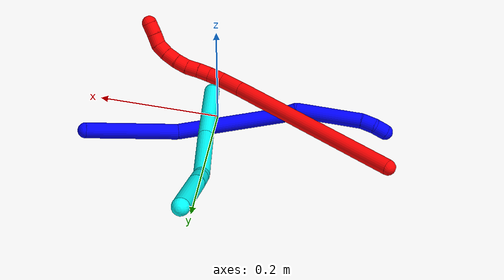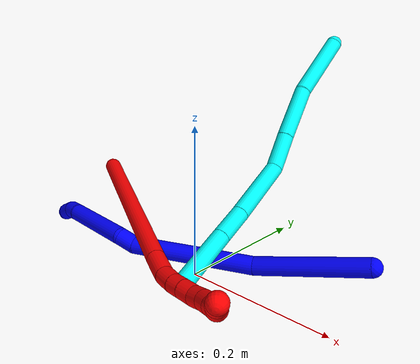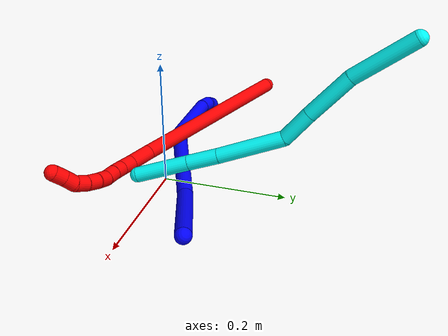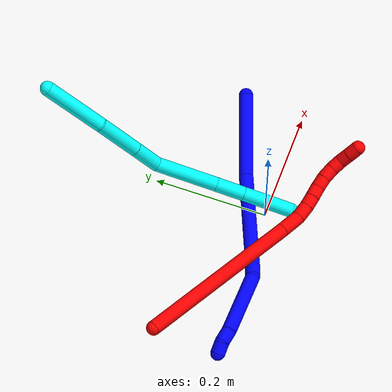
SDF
<sdf version="1.7">
 <world name="default">
  <model name="bin">
   <static>1</static>
   <link name="bottom">
    <collision name="collision-bottom">
     <pose>0 0 -0.01 0 -0 0</pose>
     <geometry><box><size>0.8 0.6 0.02</size></box></geometry>
     <surface>
      <friction><ode><mu>100</mu><mu2>100</mu2></ode></friction>
      <contact><collide_bitmask>65535</collide_bitmask></contact>
     </surface>
    </collision>
   </link>
   <link name="west_wall">
    <collision name="collision-west_wall">
     <pose>-0.41 0 0.1 0 -0 0</pose>
     <geometry><box><size>0.02 0.6 0.2</size></box></geometry>
     <surface>
      <friction><ode><mu>100</mu><mu2>100</mu2></ode></friction>
      <contact><collide_bitmask>65535</collide_bitmask></contact>
     </surface>
    </collision>
   </link>
   <link name="east_wall">
    <collision name="collision-east_wall">
     <pose>0.41 0 0.1 0 -0 0</pose>
     <geometry><box><size>0.02 0.6 0.2</size></box></geometry>
     <surface>
      <friction><ode><mu>100</mu><mu2>100</mu2></ode></friction>
      <contact><collide_bitmask>65535</collide_bitmask></contact>
     </surface>
    </collision>
   </link>
   <link name="south_wall">
    <collision name="collision-south_wall">
     <pose>0 -0.31 0.1 0 -0 0</pose>
     <geometry><box><size>0.8 0.02 0.2</size></box></geometry>
     <surface>
      <friction><ode><mu>100</mu><mu2>100</mu2></ode></friction>
      <contact><collide_bitmask>65535</collide_bitmask></contact>
     </surface>
    </collision>
   </link>
   <link name="north_wall">
    <collision name="collision-north_wall">
     <pose>0 0.31 0.1 0 -0 0</pose>
     <geometry><box><size>0.8 0.02 0.2</size></box></geometry>
     <surface>
      <friction><ode><mu>100</mu><mu2>100</mu2></ode></friction>
      <contact><collide_bitmask>65535</collide_bitmask></contact>
     </surface>
    </collision>
   </link>
  </model>
  <model name="1">
   <static>0</static>
   <link name="1">
    <collision name="collision-cylinder-e_1_1_4">
     <pose>-0.056085 -0.009486 -0.048654 2.94903 -0.846986 -2.71946</pose>
     <geometry><cylinder><radius>0.0125</radius><length>0.149703</length></cylinder></geometry>
     <surface>
      <friction><ode><mu>1.16</mu><mu2>1.16</mu2><slip1>0</slip1><slip2>0</slip2></ode></friction>
      <contact><ode><kp>1e+06</kp><kd>1</kd><max_vel>0</max_vel><min_depth>0.001</min_depth></ode></contact>
     </surface>
    </collision>
    <visual name="visual-cylinder-e_1_1_4">
     <pose>-0.056085 -0.009486 -0.048654 2.94903 -0.846986 -2.71946</pose>
     <geometry><cylinder><radius>0.0125</radius><length>0.149703</length></cylinder></geometry>
     <material><ambient>0 0 1 1</ambient></material>
    </visual>
    <collision name="collision-cylinder-e_2_4_5">
     <pose>-0.18061 -0.045147 -0.144432 2.63459 -0.903636 -2.16087</pose>
     <geometry><cylinder><radius>0.0125</radius><length>0.174238</length></cylinder></geometry>
     <surface>
      <friction><ode><mu>1.16</mu><mu2>1.16</mu2><slip1>0</slip1><slip2>0</slip2></ode></friction>
      <contact><ode><kp>1e+06</kp><kd>1</kd><max_vel>0</max_vel><min_depth>0.001</min_depth></ode></contact>
     </surface>
    </collision>
    <visual name="visual-cylinder-e_2_4_5">
     <pose>-0.18061 -0.045147 -0.144432 2.63459 -0.903636 -2.16087</pose>
     <geometry><cylinder><radius>0.0125</radius><length>0.174238</length></cylinder></geometry>
     <material><ambient>0 0 1 1</ambient></material>
    </visual>
    <collision name="collision-cylinder-e_3_5_6">
     <pose>-0.25981 -0.077099 -0.194282 2.01166 -1.03507 -1.46352</pose>
     <geometry><cylinder><radius>0.0125</radius><length>0.02503</length></cylinder></geometry>
     <surface>
      <friction><ode><mu>1.16</mu><mu2>1.16</mu2><slip1>0</slip1><slip2>0</slip2></ode></friction>
      <contact><ode><kp>1e+06</kp><kd>1</kd><max_vel>0</max_vel><min_depth>0.001</min_depth></ode></contact>
     </surface>
    </collision>
    <visual name="visual-cylinder-e_3_5_6">
     <pose>-0.25981 -0.077099 -0.194282 2.01166 -1.03507 -1.46352</pose>
     <geometry><cylinder><radius>0.0125</radius><length>0.02503</length></cylinder></geometry>
     <material><ambient>0 0 1 1</ambient></material>
    </visual>
    <collision name="collision-cylinder-e_4_6_7">
     <pose>-0.322246 -0.082528 -0.212382 -3.11889 -1.28155 3.11115</pose>
     <geometry><cylinder><radius>0.0125</radius><length>0.107827</length></cylinder></geometry>
     <surface>
      <friction><ode><mu>1.16</mu><mu2>1.16</mu2><slip1>0</slip1><slip2>0</slip2></ode></friction>
      <contact><ode><kp>1e+06</kp><kd>1</kd><max_vel>0</max_vel><min_depth>0.001</min_depth></ode></contact>
     </surface>
    </collision>
    <visual name="visual-cylinder-e_4_6_7">
     <pose>-0.322246 -0.082528 -0.212382 -3.11889 -1.28155 3.11115</pose>
     <geometry><cylinder><radius>0.0125</radius><length>0.107827</length></cylinder></geometry>
     <material><ambient>0 0 1 1</ambient></material>
    </visual>
    <collision name="collision-cylinder-e_5_7_8">
     <pose>-0.384368 -0.079668 -0.231014 -2.48507 -1.19569 2.21407</pose>
     <geometry><cylinder><radius>0.0125</radius><length>0.022458</length></cylinder></geometry>
     <surface>
      <friction><ode><mu>1.16</mu><mu2>1.16</mu2><slip1>0</slip1><slip2>0</slip2></ode></friction>
      <contact><ode><kp>1e+06</kp><kd>1</kd><max_vel>0</max_vel><min_depth>0.001</min_depth></ode></contact>
     </surface>
    </collision>
    <visual name="visual-cylinder-e_5_7_8">
     <pose>-0.384368 -0.079668 -0.231014 -2.48507 -1.19569 2.21407</pose>
     <geometry><cylinder><radius>0.0125</radius><length>0.022458</length></cylinder></geometry>
     <material><ambient>0 0 1 1</ambient></material>
    </visual>
    <collision name="collision-cylinder-e_6_8_2">
     <pose>-0.402359 -0.073632 -0.240459 -2.62364 -0.814315 2.03984</pose>
     <geometry><cylinder><radius>0.0125</radius><length>0.020744</length></cylinder></geometry>
     <surface>
      <friction><ode><mu>1.16</mu><mu2>1.16</mu2><slip1>0</slip1><slip2>0</slip2></ode></friction>
      <contact><ode><kp>1e+06</kp><kd>1</kd><max_vel>0</max_vel><min_depth>0.001</min_depth></ode></contact>
     </surface>
    </collision>
    <visual name="visual-cylinder-e_6_8_2">
     <pose>-0.402359 -0.073632 -0.240459 -2.62364 -0.814315 2.03984</pose>
     <geometry><cylinder><radius>0.0125</radius><length>0.020744</length></cylinder></geometry>
     <material><ambient>0 0 1 1</ambient></material>
    </visual>
    <collision name="collision-sphere-2">
     <pose>-0.409903 -0.070107 -0.246644 0 -0 0</pose>
     <geometry><sphere><radius>0.0125</radius></sphere></geometry>
     <surface>
      <friction><ode><mu>1.16</mu><mu2>1.16</mu2><slip1>0</slip1><slip2>0</slip2></ode></friction>
      <contact><ode><kp>1e+06</kp><kd>1</kd><max_vel>0</max_vel><min_depth>0.001</min_depth></ode></contact>
     </surface>
    </collision>
    <visual name="visual-sphere-2">
     <pose>-0.409903 -0.070107 -0.246644 0 -0 0</pose>
     <geometry><sphere><radius>0.0125</radius></sphere></geometry>
     <material><ambient>0 0 1 1</ambient></material>
    </visual>
    <collision name="collision-sphere-4">
     <pose>-0.112171 -0.018973 -0.097308 0 -0 0</pose>
     <geometry><sphere><radius>0.0125</radius></sphere></geometry>
     <surface>
      <friction><ode><mu>1.16</mu><mu2>1.16</mu2><slip1>0</slip1><slip2>0</slip2></ode></friction>
      <contact><ode><kp>1e+06</kp><kd>1</kd><max_vel>0</max_vel><min_depth>0.001</min_depth></ode></contact>
     </surface>
    </collision>
    <visual name="visual-sphere-4">
     <pose>-0.112171 -0.018973 -0.097308 0 -0 0</pose>
     <geometry><sphere><radius>0.0125</radius></sphere></geometry>
     <material><ambient>0 0 1 1</ambient></material>
    </visual>
    <collision name="collision-sphere-1">
     <geometry><sphere><radius>0.0125</radius></sphere></geometry>
     <surface>
      <friction><ode><mu>1.16</mu><mu2>1.16</mu2><slip1>0</slip1><slip2>0</slip2></ode></friction>
      <contact><ode><kp>1e+06</kp><kd>1</kd><max_vel>0</max_vel><min_depth>0.001</min_depth></ode></contact>
     </surface>
    </collision>
    <visual name="visual-sphere-1">
     <geometry><sphere><radius>0.0125</radius></sphere></geometry>
     <material><ambient>0 0 1 1</ambient></material>
    </visual>
    <collision name="collision-sphere-8">
     <pose>-0.394816 -0.077157 -0.234273 0 -0 0</pose>
     <geometry><sphere><radius>0.0125</radius></sphere></geometry>
     <surface>
      <friction><ode><mu>1.16</mu><mu2>1.16</mu2><slip1>0</slip1><slip2>0</slip2></ode></friction>
      <contact><ode><kp>1e+06</kp><kd>1</kd><max_vel>0</max_vel><min_depth>0.001</min_depth></ode></contact>
     </surface>
    </collision>
    <visual name="visual-sphere-8">
     <pose>-0.394816 -0.077157 -0.234273 0 -0 0</pose>
     <geometry><sphere><radius>0.0125</radius></sphere></geometry>
     <material><ambient>0 0 1 1</ambient></material>
    </visual>
    <collision name="collision-sphere-5">
     <pose>-0.249049 -0.071322 -0.191556 0 -0 0</pose>
     <geometry><sphere><radius>0.0125</radius></sphere></geometry>
     <surface>
      <friction><ode><mu>1.16</mu><mu2>1.16</mu2><slip1>0</slip1><slip2>0</slip2></ode></friction>
      <contact><ode><kp>1e+06</kp><kd>1</kd><max_vel>0</max_vel><min_depth>0.001</min_depth></ode></contact>
     </surface>
    </collision>
    <visual name="visual-sphere-5">
     <pose>-0.249049 -0.071322 -0.191556 0 -0 0</pose>
     <geometry><sphere><radius>0.0125</radius></sphere></geometry>
     <material><ambient>0 0 1 1</ambient></material>
    </visual>
    <collision name="collision-sphere-6">
     <pose>-0.270572 -0.082877 -0.197008 0 -0 0</pose>
     <geometry><sphere><radius>0.0125</radius></sphere></geometry>
     <surface>
      <friction><ode><mu>1.16</mu><mu2>1.16</mu2><slip1>0</slip1><slip2>0</slip2></ode></friction>
      <contact><ode><kp>1e+06</kp><kd>1</kd><max_vel>0</max_vel><min_depth>0.001</min_depth></ode></contact>
     </surface>
    </collision>
    <visual name="visual-sphere-6">
     <pose>-0.270572 -0.082877 -0.197008 0 -0 0</pose>
     <geometry><sphere><radius>0.0125</radius></sphere></geometry>
     <material><ambient>0 0 1 1</ambient></material>
    </visual>
    <collision name="collision-sphere-7">
     <pose>-0.37392 -0.082179 -0.227756 0 -0 0</pose>
     <geometry><sphere><radius>0.0125</radius></sphere></geometry>
     <surface>
      <friction><ode><mu>1.16</mu><mu2>1.16</mu2><slip1>0</slip1><slip2>0</slip2></ode></friction>
      <contact><ode><kp>1e+06</kp><kd>1</kd><max_vel>0</max_vel><min_depth>0.001</min_depth></ode></contact>
     </surface>
    </collision>
    <visual name="visual-sphere-7">
     <pose>-0.37392 -0.082179 -0.227756 0 -0 0</pose>
     <geometry><sphere><radius>0.0125</radius></sphere></geometry>
     <material><ambient>0 0 1 1</ambient></material>
    </visual>
    <inertial>
     <pose>-0.196188 -0.046863 -0.140778 0 -0 0</pose>
     <mass>0.5</mass>
     <inertia>
      <ixx>-0.000697</ixx>
      <ixy>0</ixy>
      <ixz>0</ixz>
      <iyy>0.000433</iyy>
      <iyz>0</iyz>
      <izz>0.000825</izz>
     </inertia>
    </inertial>
   </link>
   <pose>0.193427 0.103572 0.041335 -0.719941 0.259501 -0.220732</pose>
  </model>
  <model name="2">
   <static>0</static>
   <link name="2">
    <collision name="collision-cylinder-e_1_1_4">
     <pose>0.065943 -0.015106 0.130286 0.115429 0.465862 0.027413</pose>
     <geometry><cylinder><radius>0.0125</radius><length>0.293605</length></cylinder></geometry>
     <surface>
      <friction><ode><mu>1.16</mu><mu2>1.16</mu2><slip1>0</slip1><slip2>0</slip2></ode></friction>
      <contact><ode><kp>1e+06</kp><kd>1</kd><max_vel>0</max_vel><min_depth>0.001</min_depth></ode></contact>
     </surface>
    </collision>
    <visual name="visual-cylinder-e_1_1_4">
     <pose>0.065943 -0.015106 0.130286 0.115429 0.465862 0.027413</pose>
     <geometry><cylinder><radius>0.0125</radius><length>0.293605</length></cylinder></geometry>
     <material><ambient>1 0 0 1</ambient></material>
    </visual>
    <collision name="collision-cylinder-e_2_4_5">
     <pose>0.141013 -0.032208 0.277366 0.118288 0.494882 0.029914</pose>
     <geometry><cylinder><radius>0.0125</radius><length>0.038438</length></cylinder></geometry>
     <surface>
      <friction><ode><mu>1.16</mu><mu2>1.16</mu2><slip1>0</slip1><slip2>0</slip2></ode></friction>
      <contact><ode><kp>1e+06</kp><kd>1</kd><max_vel>0</max_vel><min_depth>0.001</min_depth></ode></contact>
     </surface>
    </collision>
    <visual name="visual-cylinder-e_2_4_5">
     <pose>0.141013 -0.032208 0.277366 0.118288 0.494882 0.029914</pose>
     <geometry><cylinder><radius>0.0125</radius><length>0.038438</length></cylinder></geometry>
     <material><ambient>1 0 0 1</ambient></material>
    </visual>
    <collision name="collision-cylinder-e_3_5_6">
     <pose>0.157995 -0.033905 0.303803 -0.030921 0.683377 -0.010997</pose>
     <geometry><cylinder><radius>0.0125</radius><length>0.024879</length></cylinder></geometry>
     <surface>
      <friction><ode><mu>1.16</mu><mu2>1.16</mu2><slip1>0</slip1><slip2>0</slip2></ode></friction>
      <contact><ode><kp>1e+06</kp><kd>1</kd><max_vel>0</max_vel><min_depth>0.001</min_depth></ode></contact>
     </surface>
    </collision>
    <visual name="visual-cylinder-e_3_5_6">
     <pose>0.157995 -0.033905 0.303803 -0.030921 0.683377 -0.010997</pose>
     <geometry><cylinder><radius>0.0125</radius><length>0.024879</length></cylinder></geometry>
     <material><ambient>1 0 0 1</ambient></material>
    </visual>
    <collision name="collision-cylinder-e_4_6_7">
     <pose>0.172976 -0.032972 0.320445 -0.09043 0.792303 -0.037845</pose>
     <geometry><cylinder><radius>0.0125</radius><length>0.02002</length></cylinder></geometry>
     <surface>
      <friction><ode><mu>1.16</mu><mu2>1.16</mu2><slip1>0</slip1><slip2>0</slip2></ode></friction>
      <contact><ode><kp>1e+06</kp><kd>1</kd><max_vel>0</max_vel><min_depth>0.001</min_depth></ode></contact>
     </surface>
    </collision>
    <visual name="visual-cylinder-e_4_6_7">
     <pose>0.172976 -0.032972 0.320445 -0.09043 0.792303 -0.037845</pose>
     <geometry><cylinder><radius>0.0125</radius><length>0.02002</length></cylinder></geometry>
     <material><ambient>1 0 0 1</ambient></material>
    </visual>
    <collision name="collision-cylinder-e_5_7_8">
     <pose>0.187844 -0.032249 0.334522 -0.012589 0.83012 -0.005548</pose>
     <geometry><cylinder><radius>0.0125</radius><length>0.020976</length></cylinder></geometry>
     <surface>
      <friction><ode><mu>1.16</mu><mu2>1.16</mu2><slip1>0</slip1><slip2>0</slip2></ode></friction>
      <contact><ode><kp>1e+06</kp><kd>1</kd><max_vel>0</max_vel><min_depth>0.001</min_depth></ode></contact>
     </surface>
    </collision>
    <visual name="visual-cylinder-e_5_7_8">
     <pose>0.187844 -0.032249 0.334522 -0.012589 0.83012 -0.005548</pose>
     <geometry><cylinder><radius>0.0125</radius><length>0.020976</length></cylinder></geometry>
     <material><ambient>1 0 0 1</ambient></material>
    </visual>
    <collision name="collision-cylinder-e_6_8_9">
     <pose>0.202432 -0.029873 0.348865 -0.304823 0.732194 -0.11764</pose>
     <geometry><cylinder><radius>0.0125</radius><length>0.020486</length></cylinder></geometry>
     <surface>
      <friction><ode><mu>1.16</mu><mu2>1.16</mu2><slip1>0</slip1><slip2>0</slip2></ode></friction>
      <contact><ode><kp>1e+06</kp><kd>1</kd><max_vel>0</max_vel><min_depth>0.001</min_depth></ode></contact>
     </surface>
    </collision>
    <visual name="visual-cylinder-e_6_8_9">
     <pose>0.202432 -0.029873 0.348865 -0.304823 0.732194 -0.11764</pose>
     <geometry><cylinder><radius>0.0125</radius><length>0.020486</length></cylinder></geometry>
     <material><ambient>1 0 0 1</ambient></material>
    </visual>
    <collision name="collision-cylinder-e_7_9_10">
     <pose>0.215159 -0.024926 0.364732 -0.300005 0.578607 -0.089913</pose>
     <geometry><cylinder><radius>0.0125</radius><length>0.021506</length></cylinder></geometry>
     <surface>
      <friction><ode><mu>1.16</mu><mu2>1.16</mu2><slip1>0</slip1><slip2>0</slip2></ode></friction>
      <contact><ode><kp>1e+06</kp><kd>1</kd><max_vel>0</max_vel><min_depth>0.001</min_depth></ode></contact>
     </surface>
    </collision>
    <visual name="visual-cylinder-e_7_9_10">
     <pose>0.215159 -0.024926 0.364732 -0.300005 0.578607 -0.089913</pose>
     <geometry><cylinder><radius>0.0125</radius><length>0.021506</length></cylinder></geometry>
     <material><ambient>1 0 0 1</ambient></material>
    </visual>
    <collision name="collision-cylinder-e_8_10_11">
     <pose>0.225174 -0.018707 0.381732 -0.400823 0.4255 -0.087707</pose>
     <geometry><cylinder><radius>0.0125</radius><length>0.02003</length></cylinder></geometry>
     <surface>
      <friction><ode><mu>1.16</mu><mu2>1.16</mu2><slip1>0</slip1><slip2>0</slip2></ode></friction>
      <contact><ode><kp>1e+06</kp><kd>1</kd><max_vel>0</max_vel><min_depth>0.001</min_depth></ode></contact>
     </surface>
    </collision>
    <visual name="visual-cylinder-e_8_10_11">
     <pose>0.225174 -0.018707 0.381732 -0.400823 0.4255 -0.087707</pose>
     <geometry><cylinder><radius>0.0125</radius><length>0.02003</length></cylinder></geometry>
     <material><ambient>1 0 0 1</ambient></material>
    </visual>
    <collision name="collision-cylinder-e_9_11_12">
     <pose>0.230958 -0.007955 0.396891 -0.816406 0.165663 -0.071782</pose>
     <geometry><cylinder><radius>0.0125</radius><length>0.020016</length></cylinder></geometry>
     <surface>
      <friction><ode><mu>1.16</mu><mu2>1.16</mu2><slip1>0</slip1><slip2>0</slip2></ode></friction>
      <contact><ode><kp>1e+06</kp><kd>1</kd><max_vel>0</max_vel><min_depth>0.001</min_depth></ode></contact>
     </surface>
    </collision>
    <visual name="visual-cylinder-e_9_11_12">
     <pose>0.230958 -0.007955 0.396891 -0.816406 0.165663 -0.071782</pose>
     <geometry><cylinder><radius>0.0125</radius><length>0.020016</length></cylinder></geometry>
     <material><ambient>1 0 0 1</ambient></material>
    </visual>
    <collision name="collision-cylinder-e_10_12_2">
     <pose>0.234712 0.006002 0.410741 -0.7619 0.21144 -0.08495</pose>
     <geometry><cylinder><radius>0.0125</radius><length>0.020044</length></cylinder></geometry>
     <surface>
      <friction><ode><mu>1.16</mu><mu2>1.16</mu2><slip1>0</slip1><slip2>0</slip2></ode></friction>
      <contact><ode><kp>1e+06</kp><kd>1</kd><max_vel>0</max_vel><min_depth>0.001</min_depth></ode></contact>
     </surface>
    </collision>
    <visual name="visual-cylinder-e_10_12_2">
     <pose>0.234712 0.006002 0.410741 -0.7619 0.21144 -0.08495</pose>
     <geometry><cylinder><radius>0.0125</radius><length>0.020044</length></cylinder></geometry>
     <material><ambient>1 0 0 1</ambient></material>
    </visual>
    <collision name="collision-sphere-2">
     <pose>0.236815 0.012766 0.41783 0 -0 0</pose>
     <geometry><sphere><radius>0.0125</radius></sphere></geometry>
     <surface>
      <friction><ode><mu>1.16</mu><mu2>1.16</mu2><slip1>0</slip1><slip2>0</slip2></ode></friction>
      <contact><ode><kp>1e+06</kp><kd>1</kd><max_vel>0</max_vel><min_depth>0.001</min_depth></ode></contact>
     </surface>
    </collision>
    <visual name="visual-sphere-2">
     <pose>0.236815 0.012766 0.41783 0 -0 0</pose>
     <geometry><sphere><radius>0.0125</radius></sphere></geometry>
     <material><ambient>1 0 0 1</ambient></material>
    </visual>
    <collision name="collision-sphere-12">
     <pose>0.232608 -0.000762 0.403651 0 -0 0</pose>
     <geometry><sphere><radius>0.0125</radius></sphere></geometry>
     <surface>
      <friction><ode><mu>1.16</mu><mu2>1.16</mu2><slip1>0</slip1><slip2>0</slip2></ode></friction>
      <contact><ode><kp>1e+06</kp><kd>1</kd><max_vel>0</max_vel><min_depth>0.001</min_depth></ode></contact>
     </surface>
    </collision>
    <visual name="visual-sphere-12">
     <pose>0.232608 -0.000762 0.403651 0 -0 0</pose>
     <geometry><sphere><radius>0.0125</radius></sphere></geometry>
     <material><ambient>1 0 0 1</ambient></material>
    </visual>
    <collision name="collision-sphere-11">
     <pose>0.229308 -0.015147 0.390131 0 -0 0</pose>
     <geometry><sphere><radius>0.0125</radius></sphere></geometry>
     <surface>
      <friction><ode><mu>1.16</mu><mu2>1.16</mu2><slip1>0</slip1><slip2>0</slip2></ode></friction>
      <contact><ode><kp>1e+06</kp><kd>1</kd><max_vel>0</max_vel><min_depth>0.001</min_depth></ode></contact>
     </surface>
    </collision>
    <visual name="visual-sphere-11">
     <pose>0.229308 -0.015147 0.390131 0 -0 0</pose>
     <geometry><sphere><radius>0.0125</radius></sphere></geometry>
     <material><ambient>1 0 0 1</ambient></material>
    </visual>
    <collision name="collision-sphere-10">
     <pose>0.22104 -0.022266 0.373333 0 -0 0</pose>
     <geometry><sphere><radius>0.0125</radius></sphere></geometry>
     <surface>
      <friction><ode><mu>1.16</mu><mu2>1.16</mu2><slip1>0</slip1><slip2>0</slip2></ode></friction>
      <contact><ode><kp>1e+06</kp><kd>1</kd><max_vel>0</max_vel><min_depth>0.001</min_depth></ode></contact>
     </surface>
    </collision>
    <visual name="visual-sphere-10">
     <pose>0.22104 -0.022266 0.373333 0 -0 0</pose>
     <geometry><sphere><radius>0.0125</radius></sphere></geometry>
     <material><ambient>1 0 0 1</ambient></material>
    </visual>
    <collision name="collision-sphere-9">
     <pose>0.209279 -0.027587 0.356132 0 -0 0</pose>
     <geometry><sphere><radius>0.0125</radius></sphere></geometry>
     <surface>
      <friction><ode><mu>1.16</mu><mu2>1.16</mu2><slip1>0</slip1><slip2>0</slip2></ode></friction>
      <contact><ode><kp>1e+06</kp><kd>1</kd><max_vel>0</max_vel><min_depth>0.001</min_depth></ode></contact>
     </surface>
    </collision>
    <visual name="visual-sphere-9">
     <pose>0.209279 -0.027587 0.356132 0 -0 0</pose>
     <geometry><sphere><radius>0.0125</radius></sphere></geometry>
     <material><ambient>1 0 0 1</ambient></material>
    </visual>
    <collision name="collision-sphere-4">
     <pose>0.131885 -0.030212 0.260571 0 -0 0</pose>
     <geometry><sphere><radius>0.0125</radius></sphere></geometry>
     <surface>
      <friction><ode><mu>1.16</mu><mu2>1.16</mu2><slip1>0</slip1><slip2>0</slip2></ode></friction>
      <contact><ode><kp>1e+06</kp><kd>1</kd><max_vel>0</max_vel><min_depth>0.001</min_depth></ode></contact>
     </surface>
    </collision>
    <visual name="visual-sphere-4">
     <pose>0.131885 -0.030212 0.260571 0 -0 0</pose>
     <geometry><sphere><radius>0.0125</radius></sphere></geometry>
     <material><ambient>1 0 0 1</ambient></material>
    </visual>
    <collision name="collision-sphere-1">
     <geometry><sphere><radius>0.0125</radius></sphere></geometry>
     <surface>
      <friction><ode><mu>1.16</mu><mu2>1.16</mu2><slip1>0</slip1><slip2>0</slip2></ode></friction>
      <contact><ode><kp>1e+06</kp><kd>1</kd><max_vel>0</max_vel><min_depth>0.001</min_depth></ode></contact>
     </surface>
    </collision>
    <visual name="visual-sphere-1">
     <geometry><sphere><radius>0.0125</radius></sphere></geometry>
     <material><ambient>1 0 0 1</ambient></material>
    </visual>
    <collision name="collision-sphere-8">
     <pose>0.195584 -0.032159 0.341598 0 -0 0</pose>
     <geometry><sphere><radius>0.0125</radius></sphere></geometry>
     <surface>
      <friction><ode><mu>1.16</mu><mu2>1.16</mu2><slip1>0</slip1><slip2>0</slip2></ode></friction>
      <contact><ode><kp>1e+06</kp><kd>1</kd><max_vel>0</max_vel><min_depth>0.001</min_depth></ode></contact>
     </surface>
    </collision>
    <visual name="visual-sphere-8">
     <pose>0.195584 -0.032159 0.341598 0 -0 0</pose>
     <geometry><sphere><radius>0.0125</radius></sphere></geometry>
     <material><ambient>1 0 0 1</ambient></material>
    </visual>
    <collision name="collision-sphere-5">
     <pose>0.15014 -0.034204 0.294161 0 -0 0</pose>
     <geometry><sphere><radius>0.0125</radius></sphere></geometry>
     <surface>
      <friction><ode><mu>1.16</mu><mu2>1.16</mu2><slip1>0</slip1><slip2>0</slip2></ode></friction>
      <contact><ode><kp>1e+06</kp><kd>1</kd><max_vel>0</max_vel><min_depth>0.001</min_depth></ode></contact>
     </surface>
    </collision>
    <visual name="visual-sphere-5">
     <pose>0.15014 -0.034204 0.294161 0 -0 0</pose>
     <geometry><sphere><radius>0.0125</radius></sphere></geometry>
     <material><ambient>1 0 0 1</ambient></material>
    </visual>
    <collision name="collision-sphere-6">
     <pose>0.165849 -0.033607 0.313444 0 -0 0</pose>
     <geometry><sphere><radius>0.0125</radius></sphere></geometry>
     <surface>
      <friction><ode><mu>1.16</mu><mu2>1.16</mu2><slip1>0</slip1><slip2>0</slip2></ode></friction>
      <contact><ode><kp>1e+06</kp><kd>1</kd><max_vel>0</max_vel><min_depth>0.001</min_depth></ode></contact>
     </surface>
    </collision>
    <visual name="visual-sphere-6">
     <pose>0.165849 -0.033607 0.313444 0 -0 0</pose>
     <geometry><sphere><radius>0.0125</radius></sphere></geometry>
     <material><ambient>1 0 0 1</ambient></material>
    </visual>
    <collision name="collision-sphere-7">
     <pose>0.180103 -0.032338 0.327445 0 -0 0</pose>
     <geometry><sphere><radius>0.0125</radius></sphere></geometry>
     <surface>
      <friction><ode><mu>1.16</mu><mu2>1.16</mu2><slip1>0</slip1><slip2>0</slip2></ode></friction>
      <contact><ode><kp>1e+06</kp><kd>1</kd><max_vel>0</max_vel><min_depth>0.001</min_depth></ode></contact>
     </surface>
    </collision>
    <visual name="visual-sphere-7">
     <pose>0.180103 -0.032338 0.327445 0 -0 0</pose>
     <geometry><sphere><radius>0.0125</radius></sphere></geometry>
     <material><ambient>1 0 0 1</ambient></material>
    </visual>
    <inertial>
     <pose>0.117454 -0.01883 0.217437 0 -0 0</pose>
     <mass>0.5</mass>
     <inertia>
      <ixx>0.00198</ixx>
      <ixy>0</ixy>
      <ixz>0</ixz>
      <iyy>0.002179</iyy>
      <iyz>0</iyz>
      <izz>-0.000714</izz>
     </inertia>
    </inertial>
   </link>
   <pose>-0.287962 0.095423 0.061016 1.649 -0.127595 0.593899</pose>
  </model>
  <model name="3">
   <static>0</static>
   <link name="3">
    <collision name="collision-cylinder-e_1_1_4">
     <pose>0.001665 0.000396 -0.055247 -3.13443 0.030123 -2.67467</pose>
     <geometry><cylinder><radius>0.0125</radius><length>0.110547</length></cylinder></geometry>
     <surface>
      <friction><ode><mu>1.16</mu><mu2>1.16</mu2><slip1>0</slip1><slip2>0</slip2></ode></friction>
      <contact><ode><kp>1e+06</kp><kd>1</kd><max_vel>0</max_vel><min_depth>0.001</min_depth></ode></contact>
     </surface>
    </collision>
    <visual name="visual-cylinder-e_1_1_4">
     <pose>0.001665 0.000396 -0.055247 -3.13443 0.030123 -2.67467</pose>
     <geometry><cylinder><radius>0.0125</radius><length>0.110547</length></cylinder></geometry>
     <material><ambient>0.003922 1 0.996078 1</ambient></material>
    </visual>
    <collision name="collision-cylinder-e_2_4_5">
     <pose>0.008964 0.008596 -0.151176 -2.95205 0.135192 -1.23772</pose>
     <geometry><cylinder><radius>0.0125</radius><length>0.083611</length></cylinder></geometry>
     <surface>
      <friction><ode><mu>1.16</mu><mu2>1.16</mu2><slip1>0</slip1><slip2>0</slip2></ode></friction>
      <contact><ode><kp>1e+06</kp><kd>1</kd><max_vel>0</max_vel><min_depth>0.001</min_depth></ode></contact>
     </surface>
    </collision>
    <visual name="visual-cylinder-e_2_4_5">
     <pose>0.008964 0.008596 -0.151176 -2.95205 0.135192 -1.23772</pose>
     <geometry><cylinder><radius>0.0125</radius><length>0.083611</length></cylinder></geometry>
     <material><ambient>0.003922 1 0.996078 1</ambient></material>
    </visual>
    <collision name="collision-cylinder-e_3_5_6">
     <pose>0.018711 0.022517 -0.218588 -2.91666 0.148882 -1.16719</pose>
     <geometry><cylinder><radius>0.0125</radius><length>0.055454</length></cylinder></geometry>
     <surface>
      <friction><ode><mu>1.16</mu><mu2>1.16</mu2><slip1>0</slip1><slip2>0</slip2></ode></friction>
      <contact><ode><kp>1e+06</kp><kd>1</kd><max_vel>0</max_vel><min_depth>0.001</min_depth></ode></contact>
     </surface>
    </collision>
    <visual name="visual-cylinder-e_3_5_6">
     <pose>0.018711 0.022517 -0.218588 -2.91666 0.148882 -1.16719</pose>
     <geometry><cylinder><radius>0.0125</radius><length>0.055454</length></cylinder></geometry>
     <material><ambient>0.003922 1 0.996078 1</ambient></material>
    </visual>
    <collision name="collision-cylinder-e_4_6_7">
     <pose>0.030975 0.012667 -0.297021 2.84208 0.149495 0.921393</pose>
     <geometry><cylinder><radius>0.0125</radius><length>0.109447</length></cylinder></geometry>
     <surface>
      <friction><ode><mu>1.16</mu><mu2>1.16</mu2><slip1>0</slip1><slip2>0</slip2></ode></friction>
      <contact><ode><kp>1e+06</kp><kd>1</kd><max_vel>0</max_vel><min_depth>0.001</min_depth></ode></contact>
     </surface>
    </collision>
    <visual name="visual-cylinder-e_4_6_7">
     <pose>0.030975 0.012667 -0.297021 2.84208 0.149495 0.921393</pose>
     <geometry><cylinder><radius>0.0125</radius><length>0.109447</length></cylinder></geometry>
     <material><ambient>0.003922 1 0.996078 1</ambient></material>
    </visual>
    <collision name="collision-cylinder-e_5_7_8">
     <pose>0.042399 -0.011345 -0.372587 2.8164 0.129298 0.751759</pose>
     <geometry><cylinder><radius>0.0125</radius><length>0.050786</length></cylinder></geometry>
     <surface>
      <friction><ode><mu>1.16</mu><mu2>1.16</mu2><slip1>0</slip1><slip2>0</slip2></ode></friction>
      <contact><ode><kp>1e+06</kp><kd>1</kd><max_vel>0</max_vel><min_depth>0.001</min_depth></ode></contact>
     </surface>
    </collision>
    <visual name="visual-cylinder-e_5_7_8">
     <pose>0.042399 -0.011345 -0.372587 2.8164 0.129298 0.751759</pose>
     <geometry><cylinder><radius>0.0125</radius><length>0.050786</length></cylinder></geometry>
     <material><ambient>0.003922 1 0.996078 1</ambient></material>
    </visual>
    <collision name="collision-cylinder-e_6_8_2">
     <pose>0.051574 -0.033429 -0.438875 2.82203 0.131274 0.774561</pose>
     <geometry><cylinder><radius>0.0125</radius><length>0.090155</length></cylinder></geometry>
     <surface>
      <friction><ode><mu>1.16</mu><mu2>1.16</mu2><slip1>0</slip1><slip2>0</slip2></ode></friction>
      <contact><ode><kp>1e+06</kp><kd>1</kd><max_vel>0</max_vel><min_depth>0.001</min_depth></ode></contact>
     </surface>
    </collision>
    <visual name="visual-cylinder-e_6_8_2">
     <pose>0.051574 -0.033429 -0.438875 2.82203 0.131274 0.774561</pose>
     <geometry><cylinder><radius>0.0125</radius><length>0.090155</length></cylinder></geometry>
     <material><ambient>0.003922 1 0.996078 1</ambient></material>
    </visual>
    <collision name="collision-sphere-2">
     <pose>0.057474 -0.047468 -0.481302 0 -0 0</pose>
     <geometry><sphere><radius>0.0125</radius></sphere></geometry>
     <surface>
      <friction><ode><mu>1.16</mu><mu2>1.16</mu2><slip1>0</slip1><slip2>0</slip2></ode></friction>
      <contact><ode><kp>1e+06</kp><kd>1</kd><max_vel>0</max_vel><min_depth>0.001</min_depth></ode></contact>
     </surface>
    </collision>
    <visual name="visual-sphere-2">
     <pose>0.057474 -0.047468 -0.481302 0 -0 0</pose>
     <geometry><sphere><radius>0.0125</radius></sphere></geometry>
     <material><ambient>0.003922 1 0.996078 1</ambient></material>
    </visual>
    <collision name="collision-sphere-4">
     <pose>0.00333 0.000792 -0.110494 0 -0 0</pose>
     <geometry><sphere><radius>0.0125</radius></sphere></geometry>
     <surface>
      <friction><ode><mu>1.16</mu><mu2>1.16</mu2><slip1>0</slip1><slip2>0</slip2></ode></friction>
      <contact><ode><kp>1e+06</kp><kd>1</kd><max_vel>0</max_vel><min_depth>0.001</min_depth></ode></contact>
     </surface>
    </collision>
    <visual name="visual-sphere-4">
     <pose>0.00333 0.000792 -0.110494 0 -0 0</pose>
     <geometry><sphere><radius>0.0125</radius></sphere></geometry>
     <material><ambient>0.003922 1 0.996078 1</ambient></material>
    </visual>
    <collision name="collision-sphere-1">
     <geometry><sphere><radius>0.0125</radius></sphere></geometry>
     <surface>
      <friction><ode><mu>1.16</mu><mu2>1.16</mu2><slip1>0</slip1><slip2>0</slip2></ode></friction>
      <contact><ode><kp>1e+06</kp><kd>1</kd><max_vel>0</max_vel><min_depth>0.001</min_depth></ode></contact>
     </surface>
    </collision>
    <visual name="visual-sphere-1">
     <geometry><sphere><radius>0.0125</radius></sphere></geometry>
     <material><ambient>0.003922 1 0.996078 1</ambient></material>
    </visual>
    <collision name="collision-sphere-8">
     <pose>0.045673 -0.01939 -0.396448 0 -0 0</pose>
     <geometry><sphere><radius>0.0125</radius></sphere></geometry>
     <surface>
      <friction><ode><mu>1.16</mu><mu2>1.16</mu2><slip1>0</slip1><slip2>0</slip2></ode></friction>
      <contact><ode><kp>1e+06</kp><kd>1</kd><max_vel>0</max_vel><min_depth>0.001</min_depth></ode></contact>
     </surface>
    </collision>
    <visual name="visual-sphere-8">
     <pose>0.045673 -0.01939 -0.396448 0 -0 0</pose>
     <geometry><sphere><radius>0.0125</radius></sphere></geometry>
     <material><ambient>0.003922 1 0.996078 1</ambient></material>
    </visual>
    <collision name="collision-sphere-5">
     <pose>0.014599 0.016401 -0.191858 0 -0 0</pose>
     <geometry><sphere><radius>0.0125</radius></sphere></geometry>
     <surface>
      <friction><ode><mu>1.16</mu><mu2>1.16</mu2><slip1>0</slip1><slip2>0</slip2></ode></friction>
      <contact><ode><kp>1e+06</kp><kd>1</kd><max_vel>0</max_vel><min_depth>0.001</min_depth></ode></contact>
     </surface>
    </collision>
    <visual name="visual-sphere-5">
     <pose>0.014599 0.016401 -0.191858 0 -0 0</pose>
     <geometry><sphere><radius>0.0125</radius></sphere></geometry>
     <material><ambient>0.003922 1 0.996078 1</ambient></material>
    </visual>
    <collision name="collision-sphere-6">
     <pose>0.022824 0.028633 -0.245317 0 -0 0</pose>
     <geometry><sphere><radius>0.0125</radius></sphere></geometry>
     <surface>
      <friction><ode><mu>1.16</mu><mu2>1.16</mu2><slip1>0</slip1><slip2>0</slip2></ode></friction>
      <contact><ode><kp>1e+06</kp><kd>1</kd><max_vel>0</max_vel><min_depth>0.001</min_depth></ode></contact>
     </surface>
    </collision>
    <visual name="visual-sphere-6">
     <pose>0.022824 0.028633 -0.245317 0 -0 0</pose>
     <geometry><sphere><radius>0.0125</radius></sphere></geometry>
     <material><ambient>0.003922 1 0.996078 1</ambient></material>
    </visual>
    <collision name="collision-sphere-7">
     <pose>0.039125 -0.0033 -0.348725 0 -0 0</pose>
     <geometry><sphere><radius>0.0125</radius></sphere></geometry>
     <surface>
      <friction><ode><mu>1.16</mu><mu2>1.16</mu2><slip1>0</slip1><slip2>0</slip2></ode></friction>
      <contact><ode><kp>1e+06</kp><kd>1</kd><max_vel>0</max_vel><min_depth>0.001</min_depth></ode></contact>
     </surface>
    </collision>
    <visual name="visual-sphere-7">
     <pose>0.039125 -0.0033 -0.348725 0 -0 0</pose>
     <geometry><sphere><radius>0.0125</radius></sphere></geometry>
     <material><ambient>0.003922 1 0.996078 1</ambient></material>
    </visual>
    <inertial>
     <pose>0.024328 -0.000385 -0.243732 0 -0 0</pose>
     <mass>0.5</mass>
     <inertia><ixx>7.3e-05</ixx><ixy>0</ixy><ixz>0</ixz><iyy>-6e-06</iyy><iyz>0</iyz><izz>-3.4e-05</izz></inertia>
    </inertial>
   </link>
   <pose>-0.033489 0.369512 0.268136 -0.921437 0.070542 0.031692</pose>
  </model>
 </world>
</sdf>
